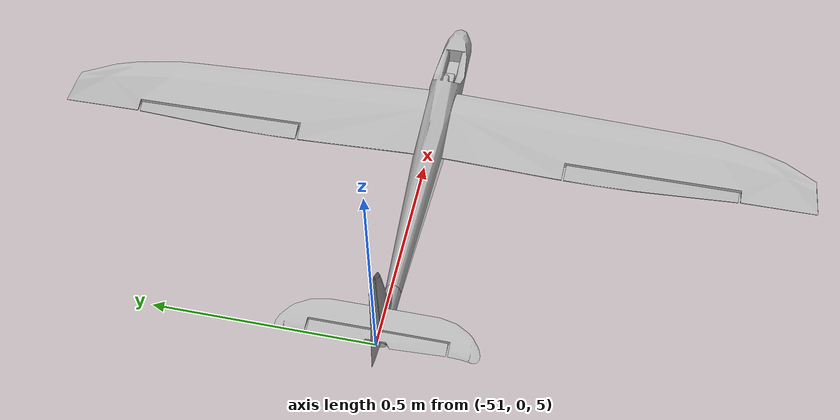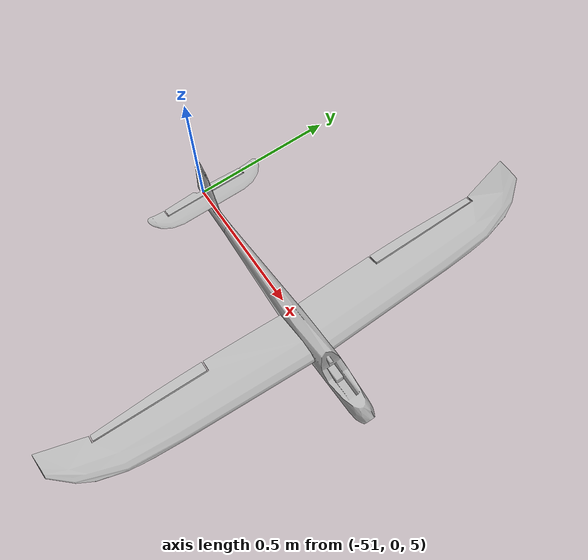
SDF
<?xml version="1.0" ?>
<sdf version="1.4">
    <world name="default">
        <include>
            <uri>model://sun</uri>
        </include>

        <model name="ground_plane">
            <static>true</static>
            <link name="link">
                <collision name="collision">
                    <geometry>
                        <plane>
                            <normal>0 0 1</normal>
                            <size>5000 5000</size>
                        </plane>
                    </geometry>
                    <surface>
                        <friction>
                            <ode>
                                <mu>1</mu>
                                <mu2>1</mu2>
                            </ode>
                        </friction>
                    </surface>
                </collision>
                <visual name="runway">
                    <pose>700 0 0 0 0 0</pose>
                    <cast_shadows>false</cast_shadows>
                    <geometry>
                        <plane>
                            <normal>0 0 1</normal>
                            <size>1829 45</size>
                        </plane>
                    </geometry>
                    <material>
                        <script>
                            <uri>file://media/materials/scripts/gazebo.material</uri>
                            <name>Gazebo/Runway</name>
                        </script>
                    </material>
                </visual>
                <visual name="grass">
                    <pose>0 0 -0.1 0 0 0</pose>
                    <cast_shadows>false</cast_shadows>
                    <geometry>
                        <plane>
                            <normal>0 0 1</normal>
                            <size>5000 5000</size>
                        </plane>
                    </geometry>
                    <material>
                        <script>
                            <uri>file://media/materials/scripts/gazebo.material</uri>
                            <name>Gazebo/Grass</name>
                        </script>
                    </material>
                </visual>
            </link>
        </model>

        <model name="SUAV_glider">

            <include>
                <uri>model://glider</uri>
                <pose>-50 0 5 0 0 0</pose>
            </include>

            <plugin name="left_wing" filename="libLiftDragPlugin.so">
                <a0>0.05984281113</a0>
                <cla>4.752798721</cla>
                <cda>0.1</cda>
                <cma>-1.8</cma>
                <alpha_stall>0.3391428111</alpha_stall>
                <cla_stall>-3.85</cla_stall>
                <cda_stall>-0.9233984055</cda_stall>
                <cma_stall>0</cma_stall>
                <cp>-0.357 0.412 0.015</cp>
                <area>0.309</area>
                <air_density>1.2041</air_density>
                <forward>1 0 0</forward>
                <upward>0 0 1</upward>
                <link_name>SUAV_glider::SUAV_glider::fuselage</link_name>
            </plugin>
            <plugin name="left_aileron" filename="libLiftDragPlugin.so">
                <a0>0.05984281113</a0>
                <cla>4.752798721</cla>
                <cda>0.1</cda>
                <cma>-1.8</cma>
                <alpha_stall>0.3391428111</alpha_stall>
                <cla_stall>-3.85</cla_stall>
                <cda_stall>-0.9233984055</cda_stall>
                <cma_stall>0</cma_stall>
                <cp>-0.447 0.505 0</cp>
                <area>0.034</area>
                <air_density>1.2041</air_density>
                <forward>1 0 0</forward>
                <upward>0 0 1</upward>
                <link_name>SUAV_glider::SUAV_glider::fuselage</link_name>
                <control_joint_name>SUAV_glider::SUAV_glider::left_aileron_joint</control_joint_name>
                <control_joint_rad_to_cl>-2</control_joint_rad_to_cl>
            </plugin>
            <plugin name="right_wing" filename="libLiftDragPlugin.so">
                <a0>0.05984281113</a0>
                <cla>4.752798721</cla>
                <cda>0.1</cda>
                <cma>-1.8</cma>
                <alpha_stall>0.3391428111</alpha_stall>
                <cla_stall>-3.85</cla_stall>
                <cda_stall>-0.9233984055</cda_stall>
                <cma_stall>0</cma_stall>
                <cp>-0.357 -0.412 0.015</cp>
                <area>0.309</area>
                <air_density>1.2041</air_density>
                <forward>1 0 0</forward>
                <upward>0 0 1</upward>
                <link_name>SUAV_glider::SUAV_glider::fuselage</link_name>
            </plugin>
            <plugin name="right_aileron" filename="libLiftDragPlugin.so">
                <a0>0.05984281113</a0>
                <cla>4.752798721</cla>
                <cda>0.1</cda>
                <cma>-1.8</cma>
                <alpha_stall>0.3391428111</alpha_stall>
                <cla_stall>-3.85</cla_stall>
                <cda_stall>-0.9233984055</cda_stall>
                <cma_stall>0</cma_stall>
                <cp>-0.447 -0.505 0</cp>
                <area>0.034</area>
                <air_density>1.2041</air_density>
                <forward>1 0 0</forward>
                <upward>0 0 1</upward>
                <link_name>SUAV_glider::SUAV_glider::fuselage</link_name>
                <control_joint_name>SUAV_glider::SUAV_glider::right_aileron_joint</control_joint_name>
                <control_joint_rad_to_cl>2</control_joint_rad_to_cl>
            </plugin>
            <plugin name="elevator" filename="libLiftDragPlugin.so">
                <a0>-0.2</a0>
                <cla>4.752798721</cla>
                <cda>0.1</cda>
                <cma>-1.8</cma>
                <alpha_stall>0.3391428111</alpha_stall>
                <cla_stall>-3.85</cla_stall>
                <cda_stall>-0.9233984055</cda_stall>
                <cma_stall>0</cma_stall>
                <cp>-0.99 0 0.015</cp>
                <area>0.021</area>
                <air_density>1.2041</air_density>
                <forward>1 0 0</forward>
                <upward>0 0 1</upward>
                <link_name>SUAV_glider::SUAV_glider::fuselage</link_name>
                <control_joint_name>SUAV_glider::SUAV_glider::elevator_joint</control_joint_name>
                <control_joint_rad_to_cl>-12.0</control_joint_rad_to_cl>
            </plugin>
            <plugin name="rudder" filename="libLiftDragPlugin.so">
                <a0>0</a0>
                <cla>4.752798721</cla>
                <cda>0.1</cda>
                <cma>-1.8</cma>
                <alpha_stall>0.3391428111</alpha_stall>
                <cla_stall>-3.85</cla_stall>
                <cda_stall>-0.9233984055</cda_stall>
                <cma_stall>0</cma_stall>
                <cp>-0.998 0 0.084</cp>
                <area>0.028</area>
                <air_density>1.2041</air_density>
                <forward>1 0 0</forward>
                <upward>0 1 0</upward>
                <link_name>SUAV_glider::SUAV_glider::fuselage</link_name>
                <control_joint_name>SUAV_glider::SUAV_glider::rudder_joint</control_joint_name>
                <control_joint_rad_to_cl>4</control_joint_rad_to_cl>
            </plugin>

        </model>

        <plugin name="rodosPlugin" filename="cmake-build-debug/librodosGlider.so"/>

        <physics type="ode">
            <max_step_size>0.001</max_step_size>
            <real_time_factor>1</real_time_factor>
            <real_time_update_rate>1000</real_time_update_rate>
            <gravity>0 0 -9.81</gravity>
            <magnetic_field>0.000006 0.000023 -0.000042</magnetic_field>
            <ode>
                <solver>
                    <type>quick</type>
                    <iters>300</iters>
                    <sor>1.3</sor>
                    <use_dynamic_moi_rescaling>0</use_dynamic_moi_rescaling>
                </solver>
                <constraints>
                    <cfm>0</cfm>
                    <erp>0.2</erp>
                    <contact_max_correcting_vel>100.0</contact_max_correcting_vel>
                    <contact_surface_layer>0.001</contact_surface_layer>
                </constraints>
            </ode>
        </physics>

    </world>
</sdf>

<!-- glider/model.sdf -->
<sdf version="1.5">
    <model name="SUAV_glider">

        <pose>0 0 0.06 0 0 0</pose>

        <link name="fuselage">
            <inertial>
                <mass>0.278</mass>
                <inertia>
                    <ixx>0.0002467</ixx>
                    <ixy>0.0</ixy>
                    <iyy>0.011</iyy>
                    <ixz>-0.0001833</ixz>
                    <iyz>0.0</iyz>
                    <izz>0.011</izz>
                </inertia>
                <pose>-0.391 0 -0.009 0 0 0</pose>
                <!-- todo: pose of Fuselage -->
            </inertial>

            <collision name="collision">
                <geometry>
                    <mesh>
                        <uri>model://glider/meshes/Fuselage.dae</uri>
                    </mesh>
                </geometry>
            </collision>

            <visual name="visual">
                <geometry>
                    <mesh>
                        <uri>model://glider/meshes/Fuselage.dae</uri>
                    </mesh>
                </geometry>
            </visual>

            <sensor type="imu" name="IMU_Fuselage">
                <always_on>true</always_on>
                <update_rate>10</update_rate>
                <frame name="IMU_frame">
                    <pose>3.14159 0 0 0 0 0</pose>
                </frame>
            </sensor>

            <!-- Debug - Centers of pressure -->

        </link>

        <link name="left_wing">
            <inertial>
                <mass>0.144</mass>
                <inertia>
                    <ixx>0.008</ixx>
                    <ixy>0.0002962</ixy>
                    <iyy>0.0003079</iyy>
                    <ixz>-0.00001643</ixz>
                    <izz>0.008</izz>
                    <iyz>-0.00009843</iyz>
                </inertia>
                <pose>-0.357 0.412 0.015 0 0 0</pose>
<!--                Todo: Pose left Wing-->
            </inertial>

            <collision name="collision">
                <geometry>
                    <mesh>
                        <uri>model://glider/meshes/LeftWing.dae</uri>
                    </mesh>
                </geometry>
            </collision>

            <visual name="visual">
                <geometry>
                    <mesh>
                        <uri>model://glider/meshes/LeftWing.dae</uri>
                    </mesh>
                </geometry>
            </visual>

        </link>

        <link name="right_wing">

            <inertial>
                <mass>0.144</mass>
                <inertia>
                    <ixx>0.008</ixx>
                    <ixy>-0.0002962</ixy>
                    <iyy>0.0003079</iyy>
                    <ixz>-0.00001643</ixz>
                    <izz>0.008</izz>
                    <iyz>0.00009843</iyz>
                </inertia>
                <pose>-0.357 -0.412 0.015 0 0 0</pose>
            </inertial>

            <collision name="collision">
                <geometry>
                    <mesh>
                        <uri>model://glider/meshes/RightWing.dae</uri>
                    </mesh>
                </geometry>
            </collision>

            <visual name="visual">
                <geometry>
                    <mesh>
                        <uri>model://glider/meshes/RightWing.dae</uri>
                    </mesh>
                </geometry>
            </visual>

        </link>

        <link name="left_aileron">

            <inertial>
                <mass>0.007</mass>
                <inertia>
                    <ixx>0.00008872</ixx>
                    <ixy>-0.0000003134</ixy>
                    <iyy>0.0000006893</iyy>
                    <ixz>-0.0000001392</ixz>
                    <izz>0.0000892</izz>
                    <iyz>-0.0000007497</iyz>
                </inertia>
                <pose>-0.447 0.505 0 0 0 0</pose>
            </inertial>

            <collision name="collision">
                <geometry>
                    <mesh>
                        <uri>model://glider/meshes/LeftAileron.dae</uri>
                    </mesh>
                </geometry>
            </collision>

            <visual name="visual">
                <geometry>
                    <mesh>
                        <uri>model://glider/meshes/LeftAileron.dae</uri>
                    </mesh>
                </geometry>
            </visual>

        </link>

        <link name="right_aileron">

            <inertial>
                <mass>0.007</mass>
                <inertia>
                    <ixx>0.00008872</ixx>
                    <ixy>0.0000003134</ixy>
                    <iyy>0.0000006893</iyy>
                    <ixz>-0.0000001392</ixz>
                    <izz>0.0000892</izz>
                    <iyz>0.0000007497</iyz>
                </inertia>
                <pose>-0.447 -0.505 0 0 0 0</pose>
            </inertial>

            <collision name="collision">
                <geometry>
                    <mesh>
                        <uri>model://glider/meshes/RightAileron.dae</uri>
                    </mesh>
                </geometry>
            </collision>

            <visual name="visual">
                <geometry>
                    <mesh>
                        <uri>model://glider/meshes/RightAileron.dae</uri>
                    </mesh>
                </geometry>
            </visual>

        </link>

        <link name="elevator">

            <inertial>
                <mass>0.006</mass>
                <inertia>
                    <ixx>0.00004168</ixx>
                    <ixy>0.0</ixy>
                    <iyy>0.0000003395</iyy>
                    <ixz>-0.00000002188</ixz>
                    <izz>0.00004197</izz>
                    <iyz>0.0</iyz>
                </inertia>
                <pose>-0.99 0 0.015 0 0 0</pose>
            </inertial>

            <collision name="collision">
                <geometry>
                    <mesh>
                        <uri>model://glider/meshes/Elevator.dae</uri>
                    </mesh>
                </geometry>
            </collision>

            <visual name="visual">
                <geometry>
                    <mesh>
                        <uri>model://glider/meshes/Elevator.dae</uri>
                    </mesh>
                </geometry>
            </visual>

        </link>

        <link name="rudder">

            <inertial>
                <mass>0.011</mass>
                <inertia>
                    <ixx>0.00005019</ixx>
                    <ixy>0.0</ixy>
                    <iyy>0.00005215</iyy>
                    <ixz>-0.000001705</ixz>
                    <izz>0.000002054</izz>
                    <iyz>0.0</iyz>
                </inertia>
                <pose>-0.998 0 0.084 0 0 0</pose>
            </inertial>

            <collision name="collision">
                <geometry>
                    <mesh>
                        <uri>model://glider/meshes/Rudder.dae</uri>
                    </mesh>
                </geometry>
            </collision>

            <visual name="visual">
                <geometry>
                    <mesh>
                        <uri>model://glider/meshes/Rudder.dae</uri>
                    </mesh>
                </geometry>
            </visual>

        </link>

        <link name="battery">

            <inertial>
                <mass>0.15</mass>
                <inertia>
                    <ixx>0.00001982</ixx>
                    <ixy>0.0</ixy>
                    <iyy>0.00008976</iyy>
                    <ixz>0</ixz>
                    <izz>0.00008764</izz>
                    <iyz>0.0</iyz>
                </inertia>
                <pose>-0.21 0 -0.013 0 0 0</pose>
            </inertial>

            <collision name="collision">
                <geometry>
                    <mesh>
                        <uri>model://glider/meshes/Battery.dae</uri>
                    </mesh>
                </geometry>
            </collision>

            <visual name="visual">
                <geometry>
                    <mesh>
                        <uri>model://glider/meshes/Battery.dae</uri>
                    </mesh>
                </geometry>
            </visual>

        </link>

        <link name="vertical_stab">

            <inertial>
                <mass>0.024</mass>
                <inertia>
                    <ixx>0.00009841</ixx>
                    <ixy>0.0</ixy>
                    <iyy>0.0001291</iyy>
                    <ixz>0.0000281</ixz>
                    <izz>0.00003255</izz>
                    <iyz>0.0</iyz>
                </inertia>
                <pose>-0.922 0 0.02 0 0 0</pose>
            </inertial>

            <collision name="collision">
                <geometry>
                    <mesh>
                        <uri>model://glider/meshes/VerticalStab.dae</uri>
                    </mesh>
                </geometry>
            </collision>

            <visual name="visual">
                <geometry>
                    <mesh>
                        <uri>model://glider/meshes/VerticalStab.dae</uri>
                    </mesh>
                </geometry>
            </visual>

        </link>

        <link name="horizontal_stab">

            <inertial>
                <mass>0.017</mass>
                <inertia>
                    <ixx>0.000258</ixx>
                    <ixy>-0.000000002606</ixy>
                    <iyy>0.000005753</iyy>
                    <ixz>-0.0000003871</ixz>
                    <izz>0.0002635</izz>
                    <iyz>0.0</iyz>
                </inertia>
                                <pose>-0.957 0 0.018 0 0 0</pose>
            </inertial>

            <collision name="collision">
                <geometry>
                    <mesh>
                        <uri>model://glider/meshes/HorizontalStab.dae</uri>
                    </mesh>
                </geometry>
            </collision>

            <visual name="visual">
                <geometry>
                    <mesh>
                        <uri>model://glider/meshes/HorizontalStab.dae</uri>
                    </mesh>
                </geometry>
            </visual>

        </link>

        <!-- Joint to fix Left Wing to Fuselage -->
        <joint name='leftWing_fix' type='fixed'>
            <parent>fuselage</parent>
            <child>left_wing</child>
        </joint>

        <!-- Joint to fix Right Wing to Fuselage -->
        <joint name='rightWing_fix' type='fixed'>
            <parent>fuselage</parent>
            <child>right_wing</child>
        </joint>

        <!-- Joint to fix vertical Stabilizer to Fuselage -->
        <joint name='verticalStab_fix' type='fixed'>
            <parent>fuselage</parent>
            <child>vertical_stab</child>
        </joint>

        <!-- Joint to fix horizontal Stabilizer to Fuselage -->
        <joint name='horizStab_fix' type='fixed'>
            <parent>fuselage</parent>
            <child>horizontal_stab</child>
        </joint>

        <!-- Joint to fix horizontal Stabilizer to Fuselage -->
        <joint name='battery_fix' type='fixed'>
            <parent>fuselage</parent>
            <child>battery</child>
        </joint>

        <!-- Joint to move the left aileron -->
        <joint name='left_aileron_joint' type='revolute'>
            <parent>fuselage</parent>
            <child>left_aileron</child>
            <pose>-0.430535 0.336373 0.003041 0 0 0</pose>
            <axis>
                <xyz>0.009390997635938725 -0.9998917482902826 -0.011326997148576077</xyz>
                <limit>
                    <!-- -30/+30 deg. -->
                    <lower>-0.53</lower>
                    <upper>0.53</upper>
                    <effort>-1</effort>
                    <velocity>-1</velocity>
                </limit>
                <dynamics>
                    <damping>0.01000</damping>
                </dynamics>
            </axis>
            <physics>
                <ode>
                    <implicit_spring_damper>1</implicit_spring_damper>
                </ode>
            </physics>
        </joint>

        <!-- Joint to move the right aileron -->
        <joint name='right_aileron_joint' type='revolute'>
            <parent>fuselage</parent>
            <child>right_aileron</child>
            <pose>-0.430535 -0.336373 0.003041 0 0 0</pose>
            <axis>
                <xyz>0.009390997635938725 0.9998917482902826 -0.011326997148576077</xyz>
                <limit>
                    <!-- -30/+30 deg. -->
                    <lower>-0.53</lower>
                    <upper>0.53</upper>
                    <effort>-1</effort>
                    <velocity>-1</velocity>
                </limit>
                <dynamics>
                    <damping>0.01000</damping>
                </dynamics>
            </axis>
            <physics>
                <ode>
                    <implicit_spring_damper>1</implicit_spring_damper>
                </ode>
            </physics>
        </joint>

        <!-- Joint to move the elevator -->
        <joint name='elevator_joint' type='revolute'>
            <parent>fuselage</parent>
            <child>elevator</child>
            <pose>-0.976932 -0.151331 0.015941 0 0 0</pose>
            <axis>
                <xyz>0 1 0</xyz>
                <limit>
                    <!-- -30/+30 deg. -->
                    <lower>-0.349</lower>
                    <upper>0.349</upper>
                    <effort>-1</effort>
                    <velocity>-1</velocity>
                </limit>
                <dynamics>
                    <damping>0.01000</damping>
                </dynamics>
            </axis>
            <physics>
                <ode>
                    <implicit_spring_damper>1</implicit_spring_damper>
                </ode>
            </physics>
        </joint>

        <!-- Joint to move the rudder -->
        <joint name='rudder_joint' type='revolute'>
            <parent>fuselage</parent>
            <child>rudder</child>
            <pose> -0.976305 0 0.223558 0 0 0 </pose>
            <axis>
                <xyz>0 0 1</xyz>
                <limit>
                    <!-- -30/+30 deg. -->
                    <lower>-0.53</lower>
                    <upper>0.53</upper>
                    <effort>-1</effort>
                    <velocity>-1</velocity>
                </limit>
                <dynamics>
                    <damping>0.01000</damping>
                </dynamics>
            </axis>
            <physics>
                <ode>
                    <implicit_spring_damper>1</implicit_spring_damper>
                </ode>
            </physics>
        </joint>

        <plugin name="GliderPlugin" filename="cmake-build-debug/libglider.so">
            <initial_vel>15 0 0</initial_vel>
        </plugin>

    </model>
</sdf>
